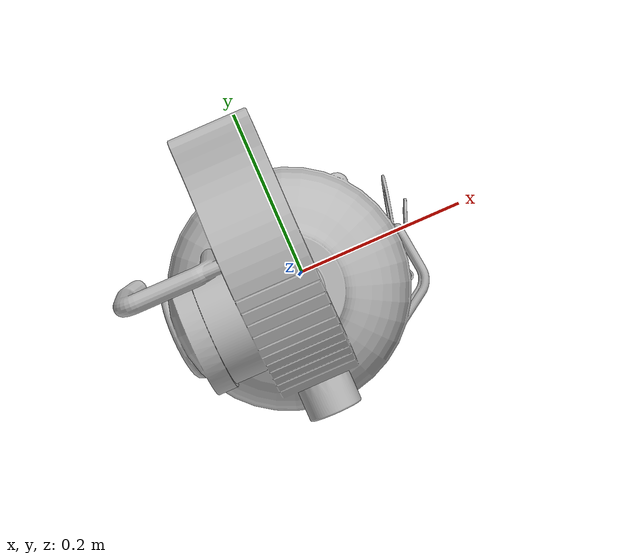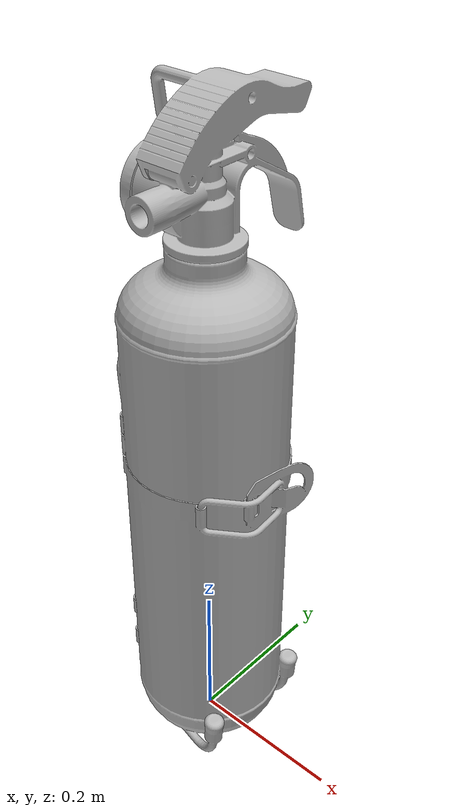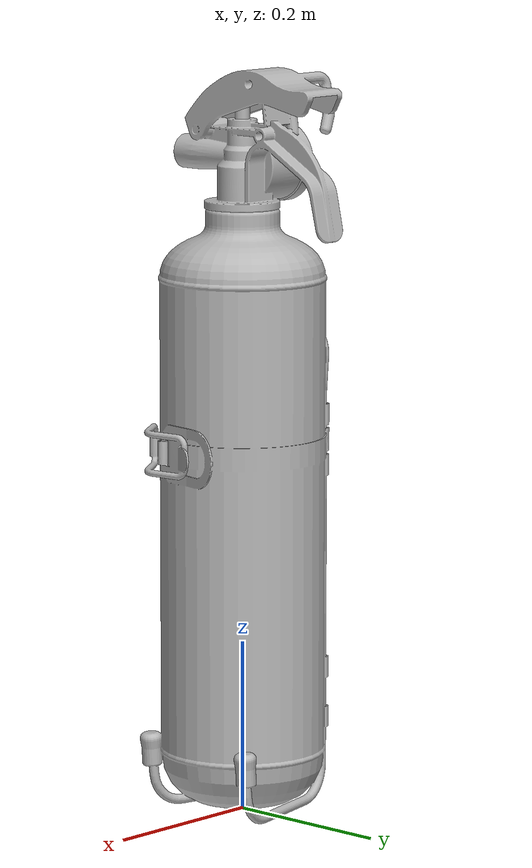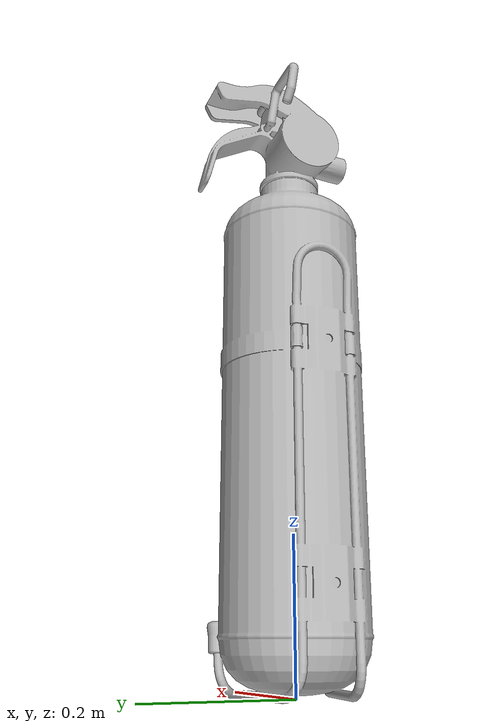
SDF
<?xml version="1.0" ?>
<sdf version="1.5">
  <model name="trash_bin">
    <link name="link">
      <inertial>
        <mass>15</mass>
        <inertia>
          <ixx>0.0</ixx>
          <ixy>0.0</ixy>
          <ixz>0.0</ixz>
          <iyy>0.0</iyy>
          <iyz>0.0</iyz>
          <izz>0.1</izz>
        </inertia>
      </inertial>
      <collision name="collision">
        <pose>-0.0 0.0 0.0 0.0 0.0 0.0</pose>
        <geometry>
          <mesh>
            <uri>model://fire_exting/meshes/fire_exting.stl</uri>

          </mesh>
        </geometry>
      </collision>
      <visual name="visual">
        <pose>0.0 0.0 0.0 0.0 0.0 0.0</pose>
        <geometry>
          <mesh>
            <uri>model://fire_exting/meshes/fire_exting.stl</uri>
   	    <scale> 1.0 1.0 1.0 </scale>
          </mesh>
        </geometry>
      </visual>
    </link>
    <static>1</static>
  </model>
</sdf>
